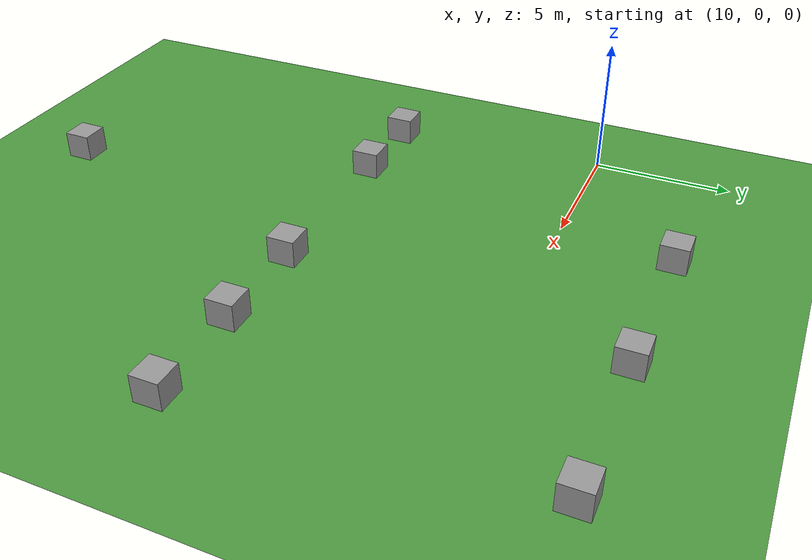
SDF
<sdf version="1.4">
 <world name="default">
  <model name="ground_plane">
   <static>1</static>
   <link name="link">
    <collision name="collision">
     <geometry><plane><normal>0 0 1</normal><size>10000 10000</size></plane></geometry>
     <surface><friction><ode><mu>100</mu><mu2>50</mu2></ode></friction></surface>
    </collision>
    <visual name="visual">
     <cast_shadows>0</cast_shadows>
     <geometry><plane><normal>0 0 1</normal><size>10000 10000</size></plane></geometry>
     <material>
      <script>
       <uri>model://ds_grass_background/materials/scripts</uri>
       <uri>model://ds_grass_background/materials/textures</uri>
       <name>GrassBackground</name>
      </script>
     </material>
    </visual>
    <velocity_decay><linear>0</linear><angular>0</angular></velocity_decay>
   </link>
  </model>
  <model name="unit_box_1">
   <pose>10.8586 -7.96776 0.468738 0 -0 0</pose>
   <link name="link">
    <inertial>
     <mass>1</mass>
     <inertia><ixx>1</ixx><ixy>0</ixy><ixz>0</ixz><iyy>1</iyy><iyz>0</iyz><izz>1</izz></inertia>
    </inertial>
    <collision name="collision"><geometry><box><size>2.07043 4.21126 0.937477</size></box></geometry></collision>
    <visual name="visual">
     <geometry><box><size>1 1 1</size></box></geometry>
     <material>
      <script><uri>file://media/materials/scripts/gazebo.material</uri><name>Gazebo/Grey</name></script>
     </material>
    </visual>
    <velocity_decay><linear>0</linear><angular>0</angular></velocity_decay>
   </link>
   <static>0</static>
  </model>
  <model name="unit_box_2">
   <pose>14 -8 0.5 0 -0 0</pose>
   <link name="link">
    <inertial>
     <mass>1</mass>
     <inertia><ixx>1</ixx><ixy>0</ixy><ixz>0</ixz><iyy>1</iyy><iyz>0</iyz><izz>1</izz></inertia>
    </inertial>
    <collision name="collision"><geometry><box><size>2.06033 4.08674 1</size></box></geometry></collision>
    <visual name="visual">
     <geometry><box><size>1 1 1</size></box></geometry>
     <material>
      <script><uri>file://media/materials/scripts/gazebo.material</uri><name>Gazebo/Grey</name></script>
     </material>
    </visual>
    <velocity_decay><linear>0</linear><angular>0</angular></velocity_decay>
   </link>
   <static>0</static>
  </model>
  <model name="unit_box_4">
   <pose>20.4945 -8 0.5 -0 -0 -0</pose>
   <link name="link">
    <inertial>
     <mass>1</mass>
     <inertia><ixx>1</ixx><ixy>0</ixy><ixz>0</ixz><iyy>1</iyy><iyz>0</iyz><izz>1</izz></inertia>
    </inertial>
    <collision name="collision"><geometry><box><size>2.31312 3.85788 1</size></box></geometry></collision>
    <visual name="visual">
     <geometry><box><size>1 1 1</size></box></geometry>
     <material>
      <script><uri>file://media/materials/scripts/gazebo.material</uri><name>Gazebo/Grey</name></script>
     </material>
    </visual>
    <velocity_decay><linear>0</linear><angular>0</angular></velocity_decay>
   </link>
   <static>0</static>
  </model>
  <model name="unit_box_5">
   <pose>24.2262 -8.01793 0.5 -0 -0 -0</pose>
   <link name="link">
    <inertial>
     <mass>1</mass>
     <inertia><ixx>1</ixx><ixy>0</ixy><ixz>0</ixz><iyy>1</iyy><iyz>0</iyz><izz>1</izz></inertia>
    </inertial>
    <collision name="collision"><geometry><box><size>2.32747 3.774 1</size></box></geometry></collision>
    <visual name="visual">
     <geometry><box><size>1 1 1</size></box></geometry>
     <material>
      <script><uri>file://media/materials/scripts/gazebo.material</uri><name>Gazebo/Grey</name></script>
     </material>
    </visual>
    <velocity_decay><linear>0</linear><angular>0</angular></velocity_decay>
   </link>
   <static>0</static>
  </model>
  <model name="unit_box_6">
   <pose>28.0472 -7.9975 0.5 0 -0 0</pose>
   <link name="link">
    <inertial>
     <mass>1</mass>
     <inertia><ixx>1</ixx><ixy>0</ixy><ixz>0</ixz><iyy>1</iyy><iyz>0</iyz><izz>1</izz></inertia>
    </inertial>
    <collision name="collision"><geometry><box><size>2.44604 3.68406 1</size></box></geometry></collision>
    <visual name="visual">
     <geometry><box><size>1 1 1</size></box></geometry>
     <material>
      <script><uri>file://media/materials/scripts/gazebo.material</uri><name>Gazebo/Grey</name></script>
     </material>
    </visual>
    <velocity_decay><linear>0</linear><angular>0</angular></velocity_decay>
   </link>
   <static>0</static>
  </model>
  <model name="unit_box_16">
   <pose>17.3418 -18.9461 0.5 0 -0 0</pose>
   <link name="link">
    <inertial>
     <mass>1</mass>
     <inertia><ixx>1</ixx><ixy>0</ixy><ixz>0</ixz><iyy>1</iyy><iyz>0</iyz><izz>1</izz></inertia>
    </inertial>
    <collision name="collision"><geometry><box><size>2.04032 3.6427 1</size></box></geometry></collision>
    <visual name="visual">
     <geometry><box><size>1 1 1</size></box></geometry>
     <material>
      <script><uri>file://media/materials/scripts/gazebo.material</uri><name>Gazebo/Grey</name></script>
     </material>
    </visual>
    <velocity_decay><linear>0</linear><angular>0</angular></velocity_decay>
   </link>
   <static>0</static>
  </model>
  <model name="unit_box_44">
   <pose>15.6057 4.10769 0.5 0 -0 0</pose>
   <link name="link">
    <inertial>
     <mass>1</mass>
     <inertia><ixx>1</ixx><ixy>0</ixy><ixz>0</ixz><iyy>1</iyy><iyz>0</iyz><izz>1</izz></inertia>
    </inertial>
    <collision name="collision"><geometry><box><size>4.21952 1.89212 1</size></box></geometry></collision>
    <visual name="visual">
     <geometry><box><size>1 1 1</size></box></geometry>
     <material>
      <script><uri>file://media/materials/scripts/gazebo.material</uri><name>Gazebo/Grey</name></script>
     </material>
    </visual>
    <velocity_decay><linear>0</linear><angular>0</angular></velocity_decay>
   </link>
   <static>0</static>
  </model>
  <model name="unit_box_45">
   <pose>21.3361 4.02387 0.499995 5e-06 -0 0</pose>
   <link name="link">
    <inertial>
     <mass>1</mass>
     <inertia><ixx>1</ixx><ixy>0</ixy><ixz>0</ixz><iyy>1</iyy><iyz>0</iyz><izz>1</izz></inertia>
    </inertial>
    <collision name="collision"><geometry><box><size>4.78414 1.82357 1</size></box></geometry></collision>
    <visual name="visual">
     <geometry><box><size>1 1 1</size></box></geometry>
     <material>
      <script><uri>file://media/materials/scripts/gazebo.material</uri><name>Gazebo/Grey</name></script>
     </material>
    </visual>
    <velocity_decay><linear>0</linear><angular>0</angular></velocity_decay>
   </link>
   <static>0</static>
  </model>
  <model name="unit_box_46">
   <pose>27 4 0.499995 -5e-06 0 0</pose>
   <link name="link">
    <inertial>
     <mass>1</mass>
     <inertia><ixx>1</ixx><ixy>0</ixy><ixz>0</ixz><iyy>1</iyy><iyz>0</iyz><izz>1</izz></inertia>
    </inertial>
    <collision name="collision"><geometry><box><size>4.86345 1.86919 1</size></box></geometry></collision>
    <visual name="visual">
     <geometry><box><size>1 1 1</size></box></geometry>
     <material>
      <script><uri>file://media/materials/scripts/gazebo.material</uri><name>Gazebo/Grey</name></script>
     </material>
    </visual>
    <velocity_decay><linear>0</linear><angular>0</angular></velocity_decay>
   </link>
   <static>0</static>
  </model>
 </world>
</sdf>
